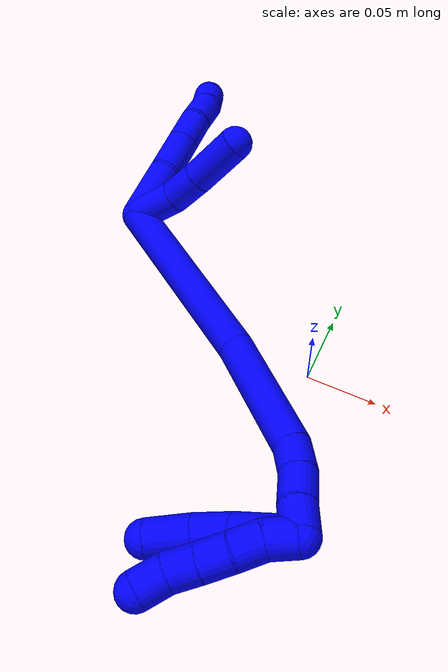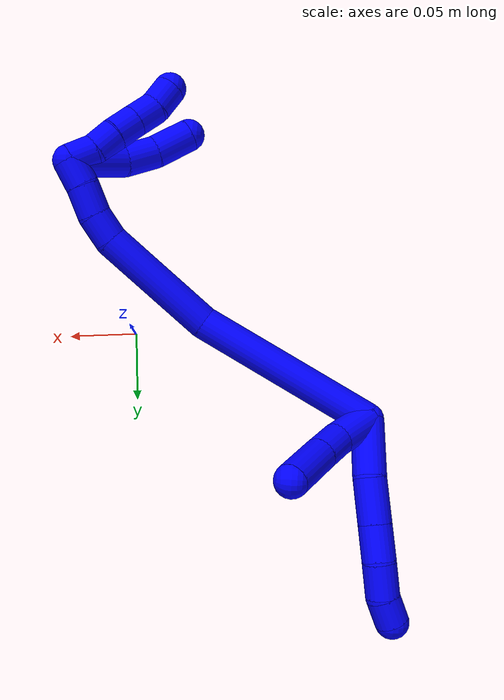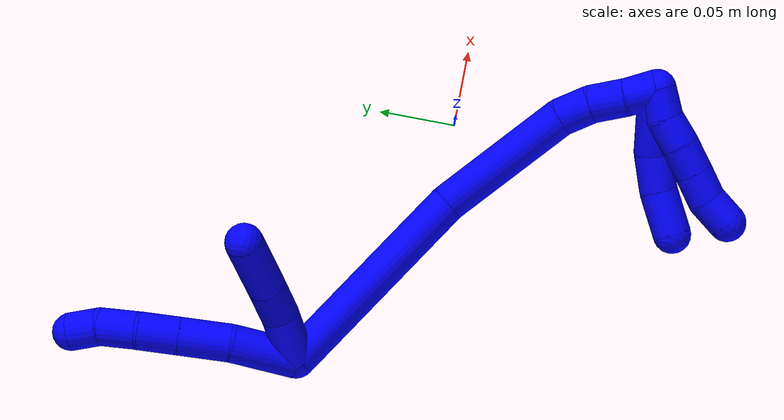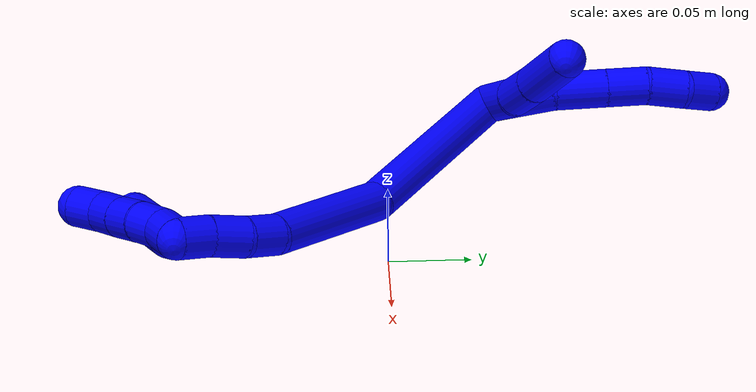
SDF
<sdf version="1.7">
 <world name="default">
  <model name="1">
   <static>0</static>
   <link name="1">
    <collision name="collision-cylinder-e_1_2_8">
     <pose>-0.003119 0.021663 0.001539 -1.49989 -0.142619 0.132878</pose>
     <geometry><cylinder><radius>0.0125</radius><length>0.043881</length></cylinder></geometry>
     <surface>
      <friction><ode><mu>1.16</mu><mu2>1.16</mu2><slip1>0</slip1><slip2>0</slip2></ode></friction>
      <contact><ode><kp>1e+06</kp><kd>1</kd><max_vel>0</max_vel><min_depth>0.001</min_depth></ode></contact>
     </surface>
    </collision>
    <visual name="visual-cylinder-e_1_2_8">
     <pose>-0.003119 0.021663 0.001539 -1.49989 -0.142619 0.132878</pose>
     <geometry><cylinder><radius>0.0125</radius><length>0.043881</length></cylinder></geometry>
     <material><ambient>0 0 1 1</ambient></material>
    </visual>
    <collision name="collision-cylinder-e_2_8_9">
     <pose>-0.01178 0.059056 0.005738 -1.40322 -0.334392 0.28333</pose>
     <geometry><cylinder><radius>0.0125</radius><length>0.033777</length></cylinder></geometry>
     <surface>
      <friction><ode><mu>1.16</mu><mu2>1.16</mu2><slip1>0</slip1><slip2>0</slip2></ode></friction>
      <contact><ode><kp>1e+06</kp><kd>1</kd><max_vel>0</max_vel><min_depth>0.001</min_depth></ode></contact>
     </surface>
    </collision>
    <visual name="visual-cylinder-e_2_8_9">
     <pose>-0.01178 0.059056 0.005738 -1.40322 -0.334392 0.28333</pose>
     <geometry><cylinder><radius>0.0125</radius><length>0.033777</length></cylinder></geometry>
     <material><ambient>0 0 1 1</ambient></material>
    </visual>
    <collision name="collision-cylinder-e_3_9_10">
     <pose>-0.021733 0.087185 0.010511 -1.40207 -0.337283 0.285463</pose>
     <geometry><cylinder><radius>0.0125</radius><length>0.026657</length></cylinder></geometry>
     <surface>
      <friction><ode><mu>1.16</mu><mu2>1.16</mu2><slip1>0</slip1><slip2>0</slip2></ode></friction>
      <contact><ode><kp>1e+06</kp><kd>1</kd><max_vel>0</max_vel><min_depth>0.001</min_depth></ode></contact>
     </surface>
    </collision>
    <visual name="visual-cylinder-e_3_9_10">
     <pose>-0.021733 0.087185 0.010511 -1.40207 -0.337283 0.285463</pose>
     <geometry><cylinder><radius>0.0125</radius><length>0.026657</length></cylinder></geometry>
     <material><ambient>0 0 1 1</ambient></material>
    </visual>
    <collision name="collision-cylinder-e_4_10_11">
     <pose>-0.032508 0.110404 0.014691 -1.38198 -0.523829 0.436335</pose>
     <geometry><cylinder><radius>0.0125</radius><length>0.025444</length></cylinder></geometry>
     <surface>
      <friction><ode><mu>1.16</mu><mu2>1.16</mu2><slip1>0</slip1><slip2>0</slip2></ode></friction>
      <contact><ode><kp>1e+06</kp><kd>1</kd><max_vel>0</max_vel><min_depth>0.001</min_depth></ode></contact>
     </surface>
    </collision>
    <visual name="visual-cylinder-e_4_10_11">
     <pose>-0.032508 0.110404 0.014691 -1.38198 -0.523829 0.436335</pose>
     <geometry><cylinder><radius>0.0125</radius><length>0.025444</length></cylinder></geometry>
     <material><ambient>0 0 1 1</ambient></material>
    </visual>
    <collision name="collision-cylinder-e_5_11_6">
     <pose>-0.044705 0.128484 0.020718 -1.07151 -0.614401 0.372317</pose>
     <geometry><cylinder><radius>0.0125</radius><length>0.020241</length></cylinder></geometry>
     <surface>
      <friction><ode><mu>1.16</mu><mu2>1.16</mu2><slip1>0</slip1><slip2>0</slip2></ode></friction>
      <contact><ode><kp>1e+06</kp><kd>1</kd><max_vel>0</max_vel><min_depth>0.001</min_depth></ode></contact>
     </surface>
    </collision>
    <visual name="visual-cylinder-e_5_11_6">
     <pose>-0.044705 0.128484 0.020718 -1.07151 -0.614401 0.372317</pose>
     <geometry><cylinder><radius>0.0125</radius><length>0.020241</length></cylinder></geometry>
     <material><ambient>0 0 1 1</ambient></material>
    </visual>
    <collision name="collision-cylinder-e_1_2_12">
     <pose>0.006013 0.011312 -0.011139 -2.34846 0.362045 -0.824106</pose>
     <geometry><cylinder><radius>0.0125</radius><length>0.033952</length></cylinder></geometry>
     <surface>
      <friction><ode><mu>1.16</mu><mu2>1.16</mu2><slip1>0</slip1><slip2>0</slip2></ode></friction>
      <contact><ode><kp>1e+06</kp><kd>1</kd><max_vel>0</max_vel><min_depth>0.001</min_depth></ode></contact>
     </surface>
    </collision>
    <visual name="visual-cylinder-e_1_2_12">
     <pose>0.006013 0.011312 -0.011139 -2.34846 0.362045 -0.824106</pose>
     <geometry><cylinder><radius>0.0125</radius><length>0.033952</length></cylinder></geometry>
     <material><ambient>0 0 1 1</ambient></material>
    </visual>
    <collision name="collision-cylinder-e_2_12_13">
     <pose>0.018223 0.031515 -0.028667 -2.19404 0.515091 -0.949117</pose>
     <geometry><cylinder><radius>0.0125</radius><length>0.025162</length></cylinder></geometry>
     <surface>
      <friction><ode><mu>1.16</mu><mu2>1.16</mu2><slip1>0</slip1><slip2>0</slip2></ode></friction>
      <contact><ode><kp>1e+06</kp><kd>1</kd><max_vel>0</max_vel><min_depth>0.001</min_depth></ode></contact>
     </surface>
    </collision>
    <visual name="visual-cylinder-e_2_12_13">
     <pose>0.018223 0.031515 -0.028667 -2.19404 0.515091 -0.949117</pose>
     <geometry><cylinder><radius>0.0125</radius><length>0.025162</length></cylinder></geometry>
     <material><ambient>0 0 1 1</ambient></material>
    </visual>
    <collision name="collision-cylinder-e_3_13_5">
     <pose>0.035253 0.054832 -0.044673 -2.15866 0.558442 -0.983492</pose>
     <geometry><cylinder><radius>0.0125</radius><length>0.040886</length></cylinder></geometry>
     <surface>
      <friction><ode><mu>1.16</mu><mu2>1.16</mu2><slip1>0</slip1><slip2>0</slip2></ode></friction>
      <contact><ode><kp>1e+06</kp><kd>1</kd><max_vel>0</max_vel><min_depth>0.001</min_depth></ode></contact>
     </surface>
    </collision>
    <visual name="visual-cylinder-e_3_13_5">
     <pose>0.035253 0.054832 -0.044673 -2.15866 0.558442 -0.983492</pose>
     <geometry><cylinder><radius>0.0125</radius><length>0.040886</length></cylinder></geometry>
     <material><ambient>0 0 1 1</ambient></material>
    </visual>
    <collision name="collision-cylinder-e_1_2_14">
     <pose>0.013141 -0.029699 -0.062996 2.70104 0.186491 0.791269</pose>
     <geometry><cylinder><radius>0.0125</radius><length>0.141749</length></cylinder></geometry>
     <surface>
      <friction><ode><mu>1.16</mu><mu2>1.16</mu2><slip1>0</slip1><slip2>0</slip2></ode></friction>
      <contact><ode><kp>1e+06</kp><kd>1</kd><max_vel>0</max_vel><min_depth>0.001</min_depth></ode></contact>
     </surface>
    </collision>
    <visual name="visual-cylinder-e_1_2_14">
     <pose>0.013141 -0.029699 -0.062996 2.70104 0.186491 0.791269</pose>
     <geometry><cylinder><radius>0.0125</radius><length>0.141749</length></cylinder></geometry>
     <material><ambient>0 0 1 1</ambient></material>
    </visual>
    <collision name="collision-cylinder-e_2_14_15">
     <pose>0.045626 -0.081288 -0.161774 2.59259 0.432083 1.32402</pose>
     <geometry><cylinder><radius>0.0125</radius><length>0.092385</length></cylinder></geometry>
     <surface>
      <friction><ode><mu>1.16</mu><mu2>1.16</mu2><slip1>0</slip1><slip2>0</slip2></ode></friction>
      <contact><ode><kp>1e+06</kp><kd>1</kd><max_vel>0</max_vel><min_depth>0.001</min_depth></ode></contact>
     </surface>
    </collision>
    <visual name="visual-cylinder-e_2_14_15">
     <pose>0.045626 -0.081288 -0.161774 2.59259 0.432083 1.32402</pose>
     <geometry><cylinder><radius>0.0125</radius><length>0.092385</length></cylinder></geometry>
     <material><ambient>0 0 1 1</ambient></material>
    </visual>
    <collision name="collision-cylinder-e_3_15_16">
     <pose>0.070716 -0.10994 -0.203938 2.32717 0.553596 1.16487</pose>
     <geometry><cylinder><radius>0.0125</radius><length>0.02186</length></cylinder></geometry>
     <surface>
      <friction><ode><mu>1.16</mu><mu2>1.16</mu2><slip1>0</slip1><slip2>0</slip2></ode></friction>
      <contact><ode><kp>1e+06</kp><kd>1</kd><max_vel>0</max_vel><min_depth>0.001</min_depth></ode></contact>
     </surface>
    </collision>
    <visual name="visual-cylinder-e_3_15_16">
     <pose>0.070716 -0.10994 -0.203938 2.32717 0.553596 1.16487</pose>
     <geometry><cylinder><radius>0.0125</radius><length>0.02186</length></cylinder></geometry>
     <material><ambient>0 0 1 1</ambient></material>
    </visual>
    <collision name="collision-cylinder-e_4_16_17">
     <pose>0.082924 -0.125129 -0.215028 2.08046 0.589848 0.955574</pose>
     <geometry><cylinder><radius>0.0125</radius><length>0.023233</length></cylinder></geometry>
     <surface>
      <friction><ode><mu>1.16</mu><mu2>1.16</mu2><slip1>0</slip1><slip2>0</slip2></ode></friction>
      <contact><ode><kp>1e+06</kp><kd>1</kd><max_vel>0</max_vel><min_depth>0.001</min_depth></ode></contact>
     </surface>
    </collision>
    <visual name="visual-cylinder-e_4_16_17">
     <pose>0.082924 -0.125129 -0.215028 2.08046 0.589848 0.955574</pose>
     <geometry><cylinder><radius>0.0125</radius><length>0.023233</length></cylinder></geometry>
     <material><ambient>0 0 1 1</ambient></material>
    </visual>
    <collision name="collision-cylinder-e_5_17_1">
     <pose>0.094437 -0.140944 -0.225009 2.19052 0.507929 0.933789</pose>
     <geometry><cylinder><radius>0.0125</radius><length>0.020773</length></cylinder></geometry>
     <surface>
      <friction><ode><mu>1.16</mu><mu2>1.16</mu2><slip1>0</slip1><slip2>0</slip2></ode></friction>
      <contact><ode><kp>1e+06</kp><kd>1</kd><max_vel>0</max_vel><min_depth>0.001</min_depth></ode></contact>
     </surface>
    </collision>
    <visual name="visual-cylinder-e_5_17_1">
     <pose>0.094437 -0.140944 -0.225009 2.19052 0.507929 0.933789</pose>
     <geometry><cylinder><radius>0.0125</radius><length>0.020773</length></cylinder></geometry>
     <material><ambient>0 0 1 1</ambient></material>
    </visual>
    <collision name="collision-cylinder-e_1_1_18">
     <pose>0.098953 -0.153851 -0.221959 0.585655 -0.053582 -0.016158</pose>
     <geometry><cylinder><radius>0.0125</radius><length>0.02</length></cylinder></geometry>
     <surface>
      <friction><ode><mu>1.16</mu><mu2>1.16</mu2><slip1>0</slip1><slip2>0</slip2></ode></friction>
      <contact><ode><kp>1e+06</kp><kd>1</kd><max_vel>0</max_vel><min_depth>0.001</min_depth></ode></contact>
     </surface>
    </collision>
    <visual name="visual-cylinder-e_1_1_18">
     <pose>0.098953 -0.153851 -0.221959 0.585655 -0.053582 -0.016158</pose>
     <geometry><cylinder><radius>0.0125</radius><length>0.02</length></cylinder></geometry>
     <material><ambient>0 0 1 1</ambient></material>
    </visual>
    <collision name="collision-cylinder-e_2_18_19">
     <pose>0.098968 -0.166996 -0.207191 0.868983 0.055037 0.025546</pose>
     <geometry><cylinder><radius>0.0125</radius><length>0.02</length></cylinder></geometry>
     <surface>
      <friction><ode><mu>1.16</mu><mu2>1.16</mu2><slip1>0</slip1><slip2>0</slip2></ode></friction>
      <contact><ode><kp>1e+06</kp><kd>1</kd><max_vel>0</max_vel><min_depth>0.001</min_depth></ode></contact>
     </surface>
    </collision>
    <visual name="visual-cylinder-e_2_18_19">
     <pose>0.098968 -0.166996 -0.207191 0.868983 0.055037 0.025546</pose>
     <geometry><cylinder><radius>0.0125</radius><length>0.02</length></cylinder></geometry>
     <material><ambient>0 0 1 1</ambient></material>
    </visual>
    <collision name="collision-cylinder-e_3_19_20">
     <pose>0.098947 -0.18202 -0.194041 0.834685 -0.057109 -0.025327</pose>
     <geometry><cylinder><radius>0.0125</radius><length>0.02</length></cylinder></geometry>
     <surface>
      <friction><ode><mu>1.16</mu><mu2>1.16</mu2><slip1>0</slip1><slip2>0</slip2></ode></friction>
      <contact><ode><kp>1e+06</kp><kd>1</kd><max_vel>0</max_vel><min_depth>0.001</min_depth></ode></contact>
     </surface>
    </collision>
    <visual name="visual-cylinder-e_3_19_20">
     <pose>0.098947 -0.18202 -0.194041 0.834685 -0.057109 -0.025327</pose>
     <geometry><cylinder><radius>0.0125</radius><length>0.02</length></cylinder></geometry>
     <material><ambient>0 0 1 1</ambient></material>
    </visual>
    <collision name="collision-cylinder-e_4_20_21">
     <pose>0.097936 -0.196635 -0.18043 0.807271 -0.044059 -0.018819</pose>
     <geometry><cylinder><radius>0.0125</radius><length>0.02</length></cylinder></geometry>
     <surface>
      <friction><ode><mu>1.16</mu><mu2>1.16</mu2><slip1>0</slip1><slip2>0</slip2></ode></friction>
      <contact><ode><kp>1e+06</kp><kd>1</kd><max_vel>0</max_vel><min_depth>0.001</min_depth></ode></contact>
     </surface>
    </collision>
    <visual name="visual-cylinder-e_4_20_21">
     <pose>0.097936 -0.196635 -0.18043 0.807271 -0.044059 -0.018819</pose>
     <geometry><cylinder><radius>0.0125</radius><length>0.02</length></cylinder></geometry>
     <material><ambient>0 0 1 1</ambient></material>
    </visual>
    <collision name="collision-cylinder-e_5_21_4">
     <pose>0.098903 -0.212383 -0.168497 1.03847 0.141265 0.08083</pose>
     <geometry><cylinder><radius>0.0125</radius><length>0.02</length></cylinder></geometry>
     <surface>
      <friction><ode><mu>1.16</mu><mu2>1.16</mu2><slip1>0</slip1><slip2>0</slip2></ode></friction>
      <contact><ode><kp>1e+06</kp><kd>1</kd><max_vel>0</max_vel><min_depth>0.001</min_depth></ode></contact>
     </surface>
    </collision>
    <visual name="visual-cylinder-e_5_21_4">
     <pose>0.098903 -0.212383 -0.168497 1.03847 0.141265 0.08083</pose>
     <geometry><cylinder><radius>0.0125</radius><length>0.02</length></cylinder></geometry>
     <material><ambient>0 0 1 1</ambient></material>
    </visual>
    <collision name="collision-cylinder-e_1_1_22">
     <pose>0.089898 -0.15699 -0.212227 0.447215 -0.446731 -0.103223</pose>
     <geometry><cylinder><radius>0.0125</radius><length>0.044401</length></cylinder></geometry>
     <surface>
      <friction><ode><mu>1.16</mu><mu2>1.16</mu2><slip1>0</slip1><slip2>0</slip2></ode></friction>
      <contact><ode><kp>1e+06</kp><kd>1</kd><max_vel>0</max_vel><min_depth>0.001</min_depth></ode></contact>
     </surface>
    </collision>
    <visual name="visual-cylinder-e_1_1_22">
     <pose>0.089898 -0.15699 -0.212227 0.447215 -0.446731 -0.103223</pose>
     <geometry><cylinder><radius>0.0125</radius><length>0.044401</length></cylinder></geometry>
     <material><ambient>0 0 1 1</ambient></material>
    </visual>
    <collision name="collision-cylinder-e_2_22_23">
     <pose>0.078258 -0.172133 -0.1833 0.537664 -0.160435 -0.044288</pose>
     <geometry><cylinder><radius>0.0125</radius><length>0.025652</length></cylinder></geometry>
     <surface>
      <friction><ode><mu>1.16</mu><mu2>1.16</mu2><slip1>0</slip1><slip2>0</slip2></ode></friction>
      <contact><ode><kp>1e+06</kp><kd>1</kd><max_vel>0</max_vel><min_depth>0.001</min_depth></ode></contact>
     </surface>
    </collision>
    <visual name="visual-cylinder-e_2_22_23">
     <pose>0.078258 -0.172133 -0.1833 0.537664 -0.160435 -0.044288</pose>
     <geometry><cylinder><radius>0.0125</radius><length>0.025652</length></cylinder></geometry>
     <material><ambient>0 0 1 1</ambient></material>
    </visual>
    <collision name="collision-cylinder-e_3_23_3">
     <pose>0.076514 -0.187365 -0.160276 0.624077 0.020424 0.006588</pose>
     <geometry><cylinder><radius>0.0125</radius><length>0.029947</length></cylinder></geometry>
     <surface>
      <friction><ode><mu>1.16</mu><mu2>1.16</mu2><slip1>0</slip1><slip2>0</slip2></ode></friction>
      <contact><ode><kp>1e+06</kp><kd>1</kd><max_vel>0</max_vel><min_depth>0.001</min_depth></ode></contact>
     </surface>
    </collision>
    <visual name="visual-cylinder-e_3_23_3">
     <pose>0.076514 -0.187365 -0.160276 0.624077 0.020424 0.006588</pose>
     <geometry><cylinder><radius>0.0125</radius><length>0.029947</length></cylinder></geometry>
     <material><ambient>0 0 1 1</ambient></material>
    </visual>
    <collision name="collision-sphere-3">
     <pose>0.07682 -0.196113 -0.148128 0 -0 0</pose>
     <geometry><sphere><radius>0.0125</radius></sphere></geometry>
     <surface>
      <friction><ode><mu>1.16</mu><mu2>1.16</mu2><slip1>0</slip1><slip2>0</slip2></ode></friction>
      <contact><ode><kp>1e+06</kp><kd>1</kd><max_vel>0</max_vel><min_depth>0.001</min_depth></ode></contact>
     </surface>
    </collision>
    <visual name="visual-sphere-3">
     <pose>0.07682 -0.196113 -0.148128 0 -0 0</pose>
     <geometry><sphere><radius>0.0125</radius></sphere></geometry>
     <material><ambient>0 0 1 1</ambient></material>
    </visual>
    <collision name="collision-sphere-23">
     <pose>0.076209 -0.178617 -0.172425 0 -0 0</pose>
     <geometry><sphere><radius>0.0125</radius></sphere></geometry>
     <surface>
      <friction><ode><mu>1.16</mu><mu2>1.16</mu2><slip1>0</slip1><slip2>0</slip2></ode></friction>
      <contact><ode><kp>1e+06</kp><kd>1</kd><max_vel>0</max_vel><min_depth>0.001</min_depth></ode></contact>
     </surface>
    </collision>
    <visual name="visual-sphere-23">
     <pose>0.076209 -0.178617 -0.172425 0 -0 0</pose>
     <geometry><sphere><radius>0.0125</radius></sphere></geometry>
     <material><ambient>0 0 1 1</ambient></material>
    </visual>
    <collision name="collision-sphere-22">
     <pose>0.080307 -0.165648 -0.194175 0 -0 0</pose>
     <geometry><sphere><radius>0.0125</radius></sphere></geometry>
     <surface>
      <friction><ode><mu>1.16</mu><mu2>1.16</mu2><slip1>0</slip1><slip2>0</slip2></ode></friction>
      <contact><ode><kp>1e+06</kp><kd>1</kd><max_vel>0</max_vel><min_depth>0.001</min_depth></ode></contact>
     </surface>
    </collision>
    <visual name="visual-sphere-22">
     <pose>0.080307 -0.165648 -0.194175 0 -0 0</pose>
     <geometry><sphere><radius>0.0125</radius></sphere></geometry>
     <material><ambient>0 0 1 1</ambient></material>
    </visual>
    <collision name="collision-sphere-4">
     <pose>0.100311 -0.220913 -0.163472 0 -0 0</pose>
     <geometry><sphere><radius>0.0125</radius></sphere></geometry>
     <surface>
      <friction><ode><mu>1.16</mu><mu2>1.16</mu2><slip1>0</slip1><slip2>0</slip2></ode></friction>
      <contact><ode><kp>1e+06</kp><kd>1</kd><max_vel>0</max_vel><min_depth>0.001</min_depth></ode></contact>
     </surface>
    </collision>
    <visual name="visual-sphere-4">
     <pose>0.100311 -0.220913 -0.163472 0 -0 0</pose>
     <geometry><sphere><radius>0.0125</radius></sphere></geometry>
     <material><ambient>0 0 1 1</ambient></material>
    </visual>
    <collision name="collision-sphere-21">
     <pose>0.097495 -0.203852 -0.173522 0 -0 0</pose>
     <geometry><sphere><radius>0.0125</radius></sphere></geometry>
     <surface>
      <friction><ode><mu>1.16</mu><mu2>1.16</mu2><slip1>0</slip1><slip2>0</slip2></ode></friction>
      <contact><ode><kp>1e+06</kp><kd>1</kd><max_vel>0</max_vel><min_depth>0.001</min_depth></ode></contact>
     </surface>
    </collision>
    <visual name="visual-sphere-21">
     <pose>0.097495 -0.203852 -0.173522 0 -0 0</pose>
     <geometry><sphere><radius>0.0125</radius></sphere></geometry>
     <material><ambient>0 0 1 1</ambient></material>
    </visual>
    <collision name="collision-sphere-20">
     <pose>0.098376 -0.189418 -0.187338 0 -0 0</pose>
     <geometry><sphere><radius>0.0125</radius></sphere></geometry>
     <surface>
      <friction><ode><mu>1.16</mu><mu2>1.16</mu2><slip1>0</slip1><slip2>0</slip2></ode></friction>
      <contact><ode><kp>1e+06</kp><kd>1</kd><max_vel>0</max_vel><min_depth>0.001</min_depth></ode></contact>
     </surface>
    </collision>
    <visual name="visual-sphere-20">
     <pose>0.098376 -0.189418 -0.187338 0 -0 0</pose>
     <geometry><sphere><radius>0.0125</radius></sphere></geometry>
     <material><ambient>0 0 1 1</ambient></material>
    </visual>
    <collision name="collision-sphere-6">
     <pose>-0.050539 0.135744 0.024678 0 -0 0</pose>
     <geometry><sphere><radius>0.0125</radius></sphere></geometry>
     <surface>
      <friction><ode><mu>1.16</mu><mu2>1.16</mu2><slip1>0</slip1><slip2>0</slip2></ode></friction>
      <contact><ode><kp>1e+06</kp><kd>1</kd><max_vel>0</max_vel><min_depth>0.001</min_depth></ode></contact>
     </surface>
    </collision>
    <visual name="visual-sphere-6">
     <pose>-0.050539 0.135744 0.024678 0 -0 0</pose>
     <geometry><sphere><radius>0.0125</radius></sphere></geometry>
     <material><ambient>0 0 1 1</ambient></material>
    </visual>
    <collision name="collision-sphere-11">
     <pose>-0.038871 0.121224 0.016759 0 -0 0</pose>
     <geometry><sphere><radius>0.0125</radius></sphere></geometry>
     <surface>
      <friction><ode><mu>1.16</mu><mu2>1.16</mu2><slip1>0</slip1><slip2>0</slip2></ode></friction>
      <contact><ode><kp>1e+06</kp><kd>1</kd><max_vel>0</max_vel><min_depth>0.001</min_depth></ode></contact>
     </surface>
    </collision>
    <visual name="visual-sphere-11">
     <pose>-0.038871 0.121224 0.016759 0 -0 0</pose>
     <geometry><sphere><radius>0.0125</radius></sphere></geometry>
     <material><ambient>0 0 1 1</ambient></material>
    </visual>
    <collision name="collision-sphere-10">
     <pose>-0.026144 0.099584 0.012623 0 -0 0</pose>
     <geometry><sphere><radius>0.0125</radius></sphere></geometry>
     <surface>
      <friction><ode><mu>1.16</mu><mu2>1.16</mu2><slip1>0</slip1><slip2>0</slip2></ode></friction>
      <contact><ode><kp>1e+06</kp><kd>1</kd><max_vel>0</max_vel><min_depth>0.001</min_depth></ode></contact>
     </surface>
    </collision>
    <visual name="visual-sphere-10">
     <pose>-0.026144 0.099584 0.012623 0 -0 0</pose>
     <geometry><sphere><radius>0.0125</radius></sphere></geometry>
     <material><ambient>0 0 1 1</ambient></material>
    </visual>
    <collision name="collision-sphere-9">
     <pose>-0.017323 0.074786 0.008399 0 -0 0</pose>
     <geometry><sphere><radius>0.0125</radius></sphere></geometry>
     <surface>
      <friction><ode><mu>1.16</mu><mu2>1.16</mu2><slip1>0</slip1><slip2>0</slip2></ode></friction>
      <contact><ode><kp>1e+06</kp><kd>1</kd><max_vel>0</max_vel><min_depth>0.001</min_depth></ode></contact>
     </surface>
    </collision>
    <visual name="visual-sphere-9">
     <pose>-0.017323 0.074786 0.008399 0 -0 0</pose>
     <geometry><sphere><radius>0.0125</radius></sphere></geometry>
     <material><ambient>0 0 1 1</ambient></material>
    </visual>
    <collision name="collision-sphere-2">
     <geometry><sphere><radius>0.0125</radius></sphere></geometry>
     <surface>
      <friction><ode><mu>1.16</mu><mu2>1.16</mu2><slip1>0</slip1><slip2>0</slip2></ode></friction>
      <contact><ode><kp>1e+06</kp><kd>1</kd><max_vel>0</max_vel><min_depth>0.001</min_depth></ode></contact>
     </surface>
    </collision>
    <visual name="visual-sphere-2">
     <geometry><sphere><radius>0.0125</radius></sphere></geometry>
     <material><ambient>0 0 1 1</ambient></material>
    </visual>
    <collision name="collision-sphere-19">
     <pose>0.099518 -0.174621 -0.200745 0 -0 0</pose>
     <geometry><sphere><radius>0.0125</radius></sphere></geometry>
     <surface>
      <friction><ode><mu>1.16</mu><mu2>1.16</mu2><slip1>0</slip1><slip2>0</slip2></ode></friction>
      <contact><ode><kp>1e+06</kp><kd>1</kd><max_vel>0</max_vel><min_depth>0.001</min_depth></ode></contact>
     </surface>
    </collision>
    <visual name="visual-sphere-19">
     <pose>0.099518 -0.174621 -0.200745 0 -0 0</pose>
     <geometry><sphere><radius>0.0125</radius></sphere></geometry>
     <material><ambient>0 0 1 1</ambient></material>
    </visual>
    <collision name="collision-sphere-8">
     <pose>-0.006237 0.043327 0.003077 0 -0 0</pose>
     <geometry><sphere><radius>0.0125</radius></sphere></geometry>
     <surface>
      <friction><ode><mu>1.16</mu><mu2>1.16</mu2><slip1>0</slip1><slip2>0</slip2></ode></friction>
      <contact><ode><kp>1e+06</kp><kd>1</kd><max_vel>0</max_vel><min_depth>0.001</min_depth></ode></contact>
     </surface>
    </collision>
    <visual name="visual-sphere-8">
     <pose>-0.006237 0.043327 0.003077 0 -0 0</pose>
     <geometry><sphere><radius>0.0125</radius></sphere></geometry>
     <material><ambient>0 0 1 1</ambient></material>
    </visual>
    <collision name="collision-sphere-12">
     <pose>0.012025 0.022625 -0.022277 0 -0 0</pose>
     <geometry><sphere><radius>0.0125</radius></sphere></geometry>
     <surface>
      <friction><ode><mu>1.16</mu><mu2>1.16</mu2><slip1>0</slip1><slip2>0</slip2></ode></friction>
      <contact><ode><kp>1e+06</kp><kd>1</kd><max_vel>0</max_vel><min_depth>0.001</min_depth></ode></contact>
     </surface>
    </collision>
    <visual name="visual-sphere-12">
     <pose>0.012025 0.022625 -0.022277 0 -0 0</pose>
     <geometry><sphere><radius>0.0125</radius></sphere></geometry>
     <material><ambient>0 0 1 1</ambient></material>
    </visual>
    <collision name="collision-sphere-13">
     <pose>0.024421 0.040405 -0.035058 0 -0 0</pose>
     <geometry><sphere><radius>0.0125</radius></sphere></geometry>
     <surface>
      <friction><ode><mu>1.16</mu><mu2>1.16</mu2><slip1>0</slip1><slip2>0</slip2></ode></friction>
      <contact><ode><kp>1e+06</kp><kd>1</kd><max_vel>0</max_vel><min_depth>0.001</min_depth></ode></contact>
     </surface>
    </collision>
    <visual name="visual-sphere-13">
     <pose>0.024421 0.040405 -0.035058 0 -0 0</pose>
     <geometry><sphere><radius>0.0125</radius></sphere></geometry>
     <material><ambient>0 0 1 1</ambient></material>
    </visual>
    <collision name="collision-sphere-5">
     <pose>0.046085 0.069259 -0.054288 0 -0 0</pose>
     <geometry><sphere><radius>0.0125</radius></sphere></geometry>
     <surface>
      <friction><ode><mu>1.16</mu><mu2>1.16</mu2><slip1>0</slip1><slip2>0</slip2></ode></friction>
      <contact><ode><kp>1e+06</kp><kd>1</kd><max_vel>0</max_vel><min_depth>0.001</min_depth></ode></contact>
     </surface>
    </collision>
    <visual name="visual-sphere-5">
     <pose>0.046085 0.069259 -0.054288 0 -0 0</pose>
     <geometry><sphere><radius>0.0125</radius></sphere></geometry>
     <material><ambient>0 0 1 1</ambient></material>
    </visual>
    <collision name="collision-sphere-14">
     <pose>0.026282 -0.059399 -0.125991 0 -0 0</pose>
     <geometry><sphere><radius>0.0125</radius></sphere></geometry>
     <surface>
      <friction><ode><mu>1.16</mu><mu2>1.16</mu2><slip1>0</slip1><slip2>0</slip2></ode></friction>
      <contact><ode><kp>1e+06</kp><kd>1</kd><max_vel>0</max_vel><min_depth>0.001</min_depth></ode></contact>
     </surface>
    </collision>
    <visual name="visual-sphere-14">
     <pose>0.026282 -0.059399 -0.125991 0 -0 0</pose>
     <geometry><sphere><radius>0.0125</radius></sphere></geometry>
     <material><ambient>0 0 1 1</ambient></material>
    </visual>
    <collision name="collision-sphere-15">
     <pose>0.064969 -0.103178 -0.197557 0 -0 0</pose>
     <geometry><sphere><radius>0.0125</radius></sphere></geometry>
     <surface>
      <friction><ode><mu>1.16</mu><mu2>1.16</mu2><slip1>0</slip1><slip2>0</slip2></ode></friction>
      <contact><ode><kp>1e+06</kp><kd>1</kd><max_vel>0</max_vel><min_depth>0.001</min_depth></ode></contact>
     </surface>
    </collision>
    <visual name="visual-sphere-15">
     <pose>0.064969 -0.103178 -0.197557 0 -0 0</pose>
     <geometry><sphere><radius>0.0125</radius></sphere></geometry>
     <material><ambient>0 0 1 1</ambient></material>
    </visual>
    <collision name="collision-sphere-16">
     <pose>0.076462 -0.116702 -0.210318 0 -0 0</pose>
     <geometry><sphere><radius>0.0125</radius></sphere></geometry>
     <surface>
      <friction><ode><mu>1.16</mu><mu2>1.16</mu2><slip1>0</slip1><slip2>0</slip2></ode></friction>
      <contact><ode><kp>1e+06</kp><kd>1</kd><max_vel>0</max_vel><min_depth>0.001</min_depth></ode></contact>
     </surface>
    </collision>
    <visual name="visual-sphere-16">
     <pose>0.076462 -0.116702 -0.210318 0 -0 0</pose>
     <geometry><sphere><radius>0.0125</radius></sphere></geometry>
     <material><ambient>0 0 1 1</ambient></material>
    </visual>
    <collision name="collision-sphere-17">
     <pose>0.089385 -0.133556 -0.219738 0 -0 0</pose>
     <geometry><sphere><radius>0.0125</radius></sphere></geometry>
     <surface>
      <friction><ode><mu>1.16</mu><mu2>1.16</mu2><slip1>0</slip1><slip2>0</slip2></ode></friction>
      <contact><ode><kp>1e+06</kp><kd>1</kd><max_vel>0</max_vel><min_depth>0.001</min_depth></ode></contact>
     </surface>
    </collision>
    <visual name="visual-sphere-17">
     <pose>0.089385 -0.133556 -0.219738 0 -0 0</pose>
     <geometry><sphere><radius>0.0125</radius></sphere></geometry>
     <material><ambient>0 0 1 1</ambient></material>
    </visual>
    <collision name="collision-sphere-1">
     <pose>0.099489 -0.148331 -0.23028 0 -0 0</pose>
     <geometry><sphere><radius>0.0125</radius></sphere></geometry>
     <surface>
      <friction><ode><mu>1.16</mu><mu2>1.16</mu2><slip1>0</slip1><slip2>0</slip2></ode></friction>
      <contact><ode><kp>1e+06</kp><kd>1</kd><max_vel>0</max_vel><min_depth>0.001</min_depth></ode></contact>
     </surface>
    </collision>
    <visual name="visual-sphere-1">
     <pose>0.099489 -0.148331 -0.23028 0 -0 0</pose>
     <geometry><sphere><radius>0.0125</radius></sphere></geometry>
     <material><ambient>0 0 1 1</ambient></material>
    </visual>
    <collision name="collision-sphere-18">
     <pose>0.098418 -0.15937 -0.213637 0 -0 0</pose>
     <geometry><sphere><radius>0.0125</radius></sphere></geometry>
     <surface>
      <friction><ode><mu>1.16</mu><mu2>1.16</mu2><slip1>0</slip1><slip2>0</slip2></ode></friction>
      <contact><ode><kp>1e+06</kp><kd>1</kd><max_vel>0</max_vel><min_depth>0.001</min_depth></ode></contact>
     </surface>
    </collision>
    <visual name="visual-sphere-18">
     <pose>0.098418 -0.15937 -0.213637 0 -0 0</pose>
     <geometry><sphere><radius>0.0125</radius></sphere></geometry>
     <material><ambient>0 0 1 1</ambient></material>
    </visual>
    <inertial>
     <pose>0.038579 -0.054793 -0.103949 0 -0 0</pose>
     <mass>0.75</mass>
     <inertia><ixx>0.000466</ixx><ixy>0</ixy><ixz>0</ixz><iyy>0.000104</iyy><iyz>0</iyz><izz>4e-05</izz></inertia>
    </inertial>
   </link>
   <pose>-0.170952 0.072379 0.012951 1.4307 -1.22249 -1.54319</pose>
  </model>
 </world>
</sdf>
